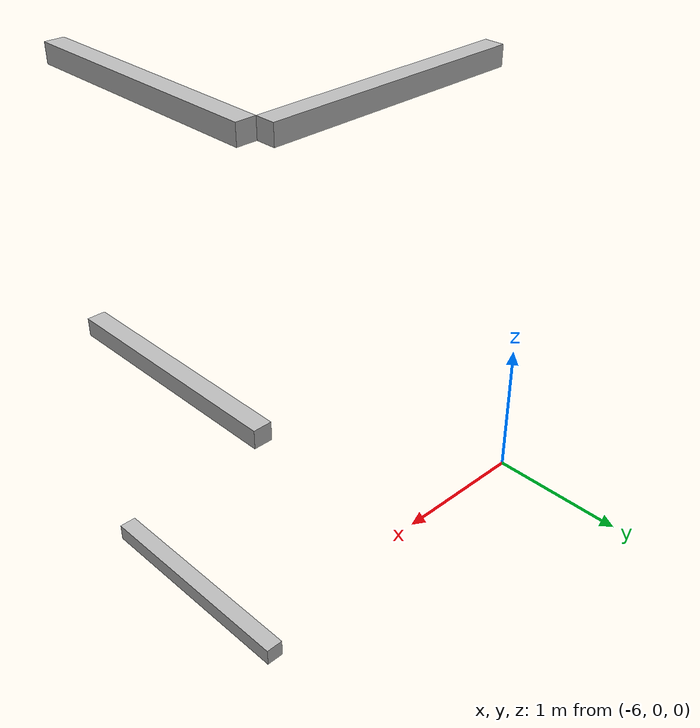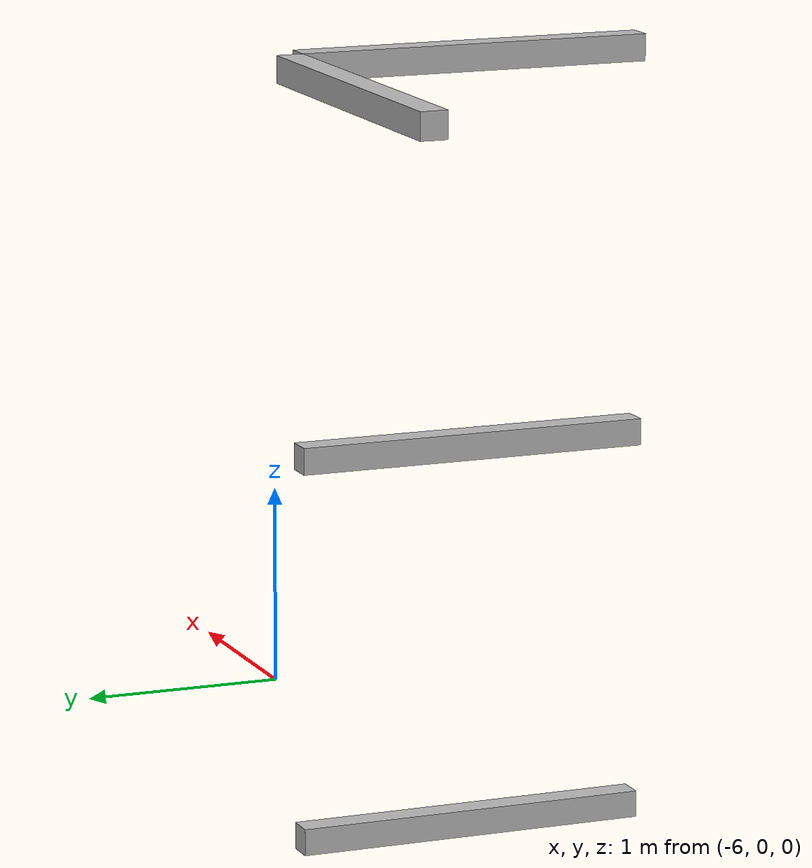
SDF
<sdf version="1.7">
 <world name="default">
  <model name="orthogonal_747_2.000.15_TS">
   <static>1</static>
   <link name="y_link_0_1_1">
    <inertial>
     <mass>1</mass>
     <inertia>
      <ixx>0.166667</ixx>
      <ixy>0</ixy>
      <ixz>0</ixz>
      <iyy>0.166667</iyy>
      <iyz>0</iyz>
      <izz>0.166667</izz>
     </inertia>
    </inertial>
    <pose>2.15 3.225 1.075 0 -0 0</pose>
    <visual name="visual_0">
     <laser_retro>190</laser_retro>
     <geometry><box><size>0.15 1e-06 0.15</size></box></geometry>
     <material>
      <script><name>Gazebo/Grey</name><uri>file://media/materials/scripts/gazebo.material</uri></script>
      <shader type="pixel"><normal_map>__default__</normal_map></shader>
      <ambient>0.678 0.498 0.659 1</ambient>
      <diffuse>0.7 0.7 0.7 1</diffuse>
      <specular>0.01 0.01 0.01 1</specular>
      <emissive>0 0 0 1</emissive>
     </material>
     <pose>0 -1 0 0 -0 0</pose>
     <transparency>1</transparency>
    </visual>
    <visual name="visual_1">
     <laser_retro>191</laser_retro>
     <geometry><box><size>0.15 1e-06 0.15</size></box></geometry>
     <material>
      <script><name>Gazebo/Grey</name><uri>file://media/materials/scripts/gazebo.material</uri></script>
      <shader type="pixel"><normal_map>__default__</normal_map></shader>
      <ambient>0.447 0.624 0.812 1</ambient>
      <diffuse>0.7 0.7 0.7 1</diffuse>
      <specular>0.01 0.01 0.01 1</specular>
      <emissive>0 0 0 1</emissive>
     </material>
     <pose>0 1 0 0 -0 0</pose>
     <transparency>1</transparency>
    </visual>
    <visual name="visual_2">
     <laser_retro>192</laser_retro>
     <geometry><box><size>0.15 2 1e-06</size></box></geometry>
     <material>
      <script><name>Gazebo/Grey</name><uri>file://media/materials/scripts/gazebo.material</uri></script>
      <shader type="pixel"><normal_map>__default__</normal_map></shader>
      <ambient>0.988 0.686 0.243 1</ambient>
      <diffuse>0.7 0.7 0.7 1</diffuse>
      <specular>0.01 0.01 0.01 1</specular>
      <emissive>0 0 0 1</emissive>
     </material>
     <pose>0 0 -0.075 0 -0 0</pose>
     <transparency>1</transparency>
    </visual>
    <visual name="visual_3">
     <laser_retro>193</laser_retro>
     <geometry><box><size>1e-06 2 0.15</size></box></geometry>
     <material>
      <script><name>Gazebo/Grey</name><uri>file://media/materials/scripts/gazebo.material</uri></script>
      <shader type="pixel"><normal_map>__default__</normal_map></shader>
      <ambient>0.988 0.914 0.31 1</ambient>
      <diffuse>0.7 0.7 0.7 1</diffuse>
      <specular>0.01 0.01 0.01 1</specular>
      <emissive>0 0 0 1</emissive>
     </material>
     <pose>0.075 0 0 0 -0 0</pose>
     <transparency>1</transparency>
    </visual>
    <visual name="visual_4">
     <laser_retro>194</laser_retro>
     <geometry><box><size>0.15 2 1e-06</size></box></geometry>
     <material>
      <script><name>Gazebo/Grey</name><uri>file://media/materials/scripts/gazebo.material</uri></script>
      <shader type="pixel"><normal_map>__default__</normal_map></shader>
      <ambient>0.937 0.161 0.161 1</ambient>
      <diffuse>0.7 0.7 0.7 1</diffuse>
      <specular>0.01 0.01 0.01 1</specular>
      <emissive>0 0 0 1</emissive>
     </material>
     <pose>0 0 0.075 0 -0 0</pose>
     <transparency>1</transparency>
    </visual>
    <visual name="visual_5">
     <laser_retro>195</laser_retro>
     <geometry><box><size>1e-06 2 0.15</size></box></geometry>
     <material>
      <script><name>Gazebo/Grey</name><uri>file://media/materials/scripts/gazebo.material</uri></script>
      <shader type="pixel"><normal_map>__default__</normal_map></shader>
      <ambient>0.541 0.886 0.204 1</ambient>
      <diffuse>0.7 0.7 0.7 1</diffuse>
      <specular>0.01 0.01 0.01 1</specular>
      <emissive>0 0 0 1</emissive>
     </material>
     <pose>-0.075 0 0 0 -0 0</pose>
     <transparency>1</transparency>
    </visual>
    <visual name="visual_texture">
     <geometry><box><size>0.149985 1.9998 0.149985</size></box></geometry>
     <material>
      <script>
       <uri>model://BASE_MODELS/simple_block_v2_textured/materials/scripts</uri>
       <uri>model://BASE_MODELS/simple_block_v2_textured/materials/textures</uri>
       <name>metal</name>
      </script>
     </material>
     <laser_retro>196</laser_retro>
    </visual>
    <collision name="collision">
     <geometry><box><size>0.15 2 0.15</size></box></geometry>
     <surface>
      <friction>
       <ode><mu>1</mu><mu2>1</mu2><fdir1>0 0 0</fdir1><slip1>0</slip1><slip2>0</slip2></ode>
       <torsional>
        <coefficient>1</coefficient>
        <patch_radius>0</patch_radius>
        <surface_radius>0</surface_radius>
        <use_patch_radius>1</use_patch_radius>
        <ode><slip>0</slip></ode>
       </torsional>
      </friction>
      <bounce><restitution_coefficient>0</restitution_coefficient><threshold>1e+06</threshold></bounce>
      <contact>
       <collide_without_contact>0</collide_without_contact>
       <collide_without_contact_bitmask>1</collide_without_contact_bitmask>
       <collide_bitmask>1</collide_bitmask>
       <ode>
        <soft_cfm>0</soft_cfm>
        <soft_erp>0.2</soft_erp>
        <kp>1e+13</kp>
        <kd>1</kd>
        <max_vel>0.01</max_vel>
        <min_depth>0</min_depth>
       </ode>
       <bullet>
        <split_impulse>1</split_impulse>
        <split_impulse_penetration_threshold>-0.01</split_impulse_penetration_threshold>
        <soft_cfm>0</soft_cfm>
        <soft_erp>0.2</soft_erp>
        <kp>1e+13</kp>
        <kd>1</kd>
       </bullet>
      </contact>
     </surface>
    </collision>
   </link>
   <link name="y_link_1_1_1">
    <inertial>
     <mass>1</mass>
     <inertia>
      <ixx>0.166667</ixx>
      <ixy>0</ixy>
      <ixz>0</ixz>
      <iyy>0.166667</iyy>
      <iyz>0</iyz>
      <izz>0.166667</izz>
     </inertia>
    </inertial>
    <pose>2.15 3.225 3.225 0 -0 0</pose>
    <visual name="visual_0">
     <laser_retro>1002</laser_retro>
     <geometry><box><size>0.15 1e-06 0.15</size></box></geometry>
     <material>
      <script><name>Gazebo/Grey</name><uri>file://media/materials/scripts/gazebo.material</uri></script>
      <shader type="pixel"><normal_map>__default__</normal_map></shader>
      <ambient>0.678 0.498 0.659 1</ambient>
      <diffuse>0.7 0.7 0.7 1</diffuse>
      <specular>0.01 0.01 0.01 1</specular>
      <emissive>0 0 0 1</emissive>
     </material>
     <pose>0 -1 0 0 -0 0</pose>
     <transparency>1</transparency>
    </visual>
    <visual name="visual_1">
     <laser_retro>1003</laser_retro>
     <geometry><box><size>0.15 1e-06 0.15</size></box></geometry>
     <material>
      <script><name>Gazebo/Grey</name><uri>file://media/materials/scripts/gazebo.material</uri></script>
      <shader type="pixel"><normal_map>__default__</normal_map></shader>
      <ambient>0.447 0.624 0.812 1</ambient>
      <diffuse>0.7 0.7 0.7 1</diffuse>
      <specular>0.01 0.01 0.01 1</specular>
      <emissive>0 0 0 1</emissive>
     </material>
     <pose>0 1 0 0 -0 0</pose>
     <transparency>1</transparency>
    </visual>
    <visual name="visual_2">
     <laser_retro>1004</laser_retro>
     <geometry><box><size>0.15 2 1e-06</size></box></geometry>
     <material>
      <script><name>Gazebo/Grey</name><uri>file://media/materials/scripts/gazebo.material</uri></script>
      <shader type="pixel"><normal_map>__default__</normal_map></shader>
      <ambient>0.988 0.686 0.243 1</ambient>
      <diffuse>0.7 0.7 0.7 1</diffuse>
      <specular>0.01 0.01 0.01 1</specular>
      <emissive>0 0 0 1</emissive>
     </material>
     <pose>0 0 -0.075 0 -0 0</pose>
     <transparency>1</transparency>
    </visual>
    <visual name="visual_3">
     <laser_retro>1005</laser_retro>
     <geometry><box><size>1e-06 2 0.15</size></box></geometry>
     <material>
      <script><name>Gazebo/Grey</name><uri>file://media/materials/scripts/gazebo.material</uri></script>
      <shader type="pixel"><normal_map>__default__</normal_map></shader>
      <ambient>0.988 0.914 0.31 1</ambient>
      <diffuse>0.7 0.7 0.7 1</diffuse>
      <specular>0.01 0.01 0.01 1</specular>
      <emissive>0 0 0 1</emissive>
     </material>
     <pose>0.075 0 0 0 -0 0</pose>
     <transparency>1</transparency>
    </visual>
    <visual name="visual_4">
     <laser_retro>1006</laser_retro>
     <geometry><box><size>0.15 2 1e-06</size></box></geometry>
     <material>
      <script><name>Gazebo/Grey</name><uri>file://media/materials/scripts/gazebo.material</uri></script>
      <shader type="pixel"><normal_map>__default__</normal_map></shader>
      <ambient>0.937 0.161 0.161 1</ambient>
      <diffuse>0.7 0.7 0.7 1</diffuse>
      <specular>0.01 0.01 0.01 1</specular>
      <emissive>0 0 0 1</emissive>
     </material>
     <pose>0 0 0.075 0 -0 0</pose>
     <transparency>1</transparency>
    </visual>
    <visual name="visual_5">
     <laser_retro>1007</laser_retro>
     <geometry><box><size>1e-06 2 0.15</size></box></geometry>
     <material>
      <script><name>Gazebo/Grey</name><uri>file://media/materials/scripts/gazebo.material</uri></script>
      <shader type="pixel"><normal_map>__default__</normal_map></shader>
      <ambient>0.541 0.886 0.204 1</ambient>
      <diffuse>0.7 0.7 0.7 1</diffuse>
      <specular>0.01 0.01 0.01 1</specular>
      <emissive>0 0 0 1</emissive>
     </material>
     <pose>-0.075 0 0 0 -0 0</pose>
     <transparency>1</transparency>
    </visual>
    <visual name="visual_texture">
     <geometry><box><size>0.149985 1.9998 0.149985</size></box></geometry>
     <material>
      <script>
       <uri>model://BASE_MODELS/simple_block_v2_textured/materials/scripts</uri>
       <uri>model://BASE_MODELS/simple_block_v2_textured/materials/textures</uri>
       <name>metal</name>
      </script>
     </material>
     <laser_retro>1008</laser_retro>
    </visual>
    <collision name="collision">
     <geometry><box><size>0.15 2 0.15</size></box></geometry>
     <surface>
      <friction>
       <ode><mu>1</mu><mu2>1</mu2><fdir1>0 0 0</fdir1><slip1>0</slip1><slip2>0</slip2></ode>
       <torsional>
        <coefficient>1</coefficient>
        <patch_radius>0</patch_radius>
        <surface_radius>0</surface_radius>
        <use_patch_radius>1</use_patch_radius>
        <ode><slip>0</slip></ode>
       </torsional>
      </friction>
      <bounce><restitution_coefficient>0</restitution_coefficient><threshold>1e+06</threshold></bounce>
      <contact>
       <collide_without_contact>0</collide_without_contact>
       <collide_without_contact_bitmask>1</collide_without_contact_bitmask>
       <collide_bitmask>1</collide_bitmask>
       <ode>
        <soft_cfm>0</soft_cfm>
        <soft_erp>0.2</soft_erp>
        <kp>1e+13</kp>
        <kd>1</kd>
        <max_vel>0.01</max_vel>
        <min_depth>0</min_depth>
       </ode>
       <bullet>
        <split_impulse>1</split_impulse>
        <split_impulse_penetration_threshold>-0.01</split_impulse_penetration_threshold>
        <soft_cfm>0</soft_cfm>
        <soft_erp>0.2</soft_erp>
        <kp>1e+13</kp>
        <kd>1</kd>
       </bullet>
      </contact>
     </surface>
    </collision>
   </link>
   <link name="y_link_2_1_1">
    <inertial>
     <mass>1</mass>
     <inertia>
      <ixx>0.166667</ixx>
      <ixy>0</ixy>
      <ixz>0</ixz>
      <iyy>0.166667</iyy>
      <iyz>0</iyz>
      <izz>0.166667</izz>
     </inertia>
    </inertial>
    <pose>2.15 3.225 5.375 0 -0 0</pose>
    <visual name="visual_0">
     <laser_retro>1905</laser_retro>
     <geometry><box><size>0.15 1e-06 0.15</size></box></geometry>
     <material>
      <script><name>Gazebo/Grey</name><uri>file://media/materials/scripts/gazebo.material</uri></script>
      <shader type="pixel"><normal_map>__default__</normal_map></shader>
      <ambient>0.678 0.498 0.659 1</ambient>
      <diffuse>0.7 0.7 0.7 1</diffuse>
      <specular>0.01 0.01 0.01 1</specular>
      <emissive>0 0 0 1</emissive>
     </material>
     <pose>0 -1 0 0 -0 0</pose>
     <transparency>1</transparency>
    </visual>
    <visual name="visual_1">
     <laser_retro>1906</laser_retro>
     <geometry><box><size>0.15 1e-06 0.15</size></box></geometry>
     <material>
      <script><name>Gazebo/Grey</name><uri>file://media/materials/scripts/gazebo.material</uri></script>
      <shader type="pixel"><normal_map>__default__</normal_map></shader>
      <ambient>0.447 0.624 0.812 1</ambient>
      <diffuse>0.7 0.7 0.7 1</diffuse>
      <specular>0.01 0.01 0.01 1</specular>
      <emissive>0 0 0 1</emissive>
     </material>
     <pose>0 1 0 0 -0 0</pose>
     <transparency>1</transparency>
    </visual>
    <visual name="visual_2">
     <laser_retro>1907</laser_retro>
     <geometry><box><size>0.15 2 1e-06</size></box></geometry>
     <material>
      <script><name>Gazebo/Grey</name><uri>file://media/materials/scripts/gazebo.material</uri></script>
      <shader type="pixel"><normal_map>__default__</normal_map></shader>
      <ambient>0.988 0.686 0.243 1</ambient>
      <diffuse>0.7 0.7 0.7 1</diffuse>
      <specular>0.01 0.01 0.01 1</specular>
      <emissive>0 0 0 1</emissive>
     </material>
     <pose>0 0 -0.075 0 -0 0</pose>
     <transparency>1</transparency>
    </visual>
    <visual name="visual_3">
     <laser_retro>1908</laser_retro>
     <geometry><box><size>1e-06 2 0.15</size></box></geometry>
     <material>
      <script><name>Gazebo/Grey</name><uri>file://media/materials/scripts/gazebo.material</uri></script>
      <shader type="pixel"><normal_map>__default__</normal_map></shader>
      <ambient>0.988 0.914 0.31 1</ambient>
      <diffuse>0.7 0.7 0.7 1</diffuse>
      <specular>0.01 0.01 0.01 1</specular>
      <emissive>0 0 0 1</emissive>
     </material>
     <pose>0.075 0 0 0 -0 0</pose>
     <transparency>1</transparency>
    </visual>
    <visual name="visual_4">
     <laser_retro>1909</laser_retro>
     <geometry><box><size>0.15 2 1e-06</size></box></geometry>
     <material>
      <script><name>Gazebo/Grey</name><uri>file://media/materials/scripts/gazebo.material</uri></script>
      <shader type="pixel"><normal_map>__default__</normal_map></shader>
      <ambient>0.937 0.161 0.161 1</ambient>
      <diffuse>0.7 0.7 0.7 1</diffuse>
      <specular>0.01 0.01 0.01 1</specular>
      <emissive>0 0 0 1</emissive>
     </material>
     <pose>0 0 0.075 0 -0 0</pose>
     <transparency>1</transparency>
    </visual>
    <visual name="visual_5">
     <laser_retro>1910</laser_retro>
     <geometry><box><size>1e-06 2 0.15</size></box></geometry>
     <material>
      <script><name>Gazebo/Grey</name><uri>file://media/materials/scripts/gazebo.material</uri></script>
      <shader type="pixel"><normal_map>__default__</normal_map></shader>
      <ambient>0.541 0.886 0.204 1</ambient>
      <diffuse>0.7 0.7 0.7 1</diffuse>
      <specular>0.01 0.01 0.01 1</specular>
      <emissive>0 0 0 1</emissive>
     </material>
     <pose>-0.075 0 0 0 -0 0</pose>
     <transparency>1</transparency>
    </visual>
    <visual name="visual_texture">
     <geometry><box><size>0.149985 1.9998 0.149985</size></box></geometry>
     <material>
      <script>
       <uri>model://BASE_MODELS/simple_block_v2_textured/materials/scripts</uri>
       <uri>model://BASE_MODELS/simple_block_v2_textured/materials/textures</uri>
       <name>metal</name>
      </script>
     </material>
     <laser_retro>1911</laser_retro>
    </visual>
    <collision name="collision">
     <geometry><box><size>0.15 2 0.15</size></box></geometry>
     <surface>
      <friction>
       <ode><mu>1</mu><mu2>1</mu2><fdir1>0 0 0</fdir1><slip1>0</slip1><slip2>0</slip2></ode>
       <torsional>
        <coefficient>1</coefficient>
        <patch_radius>0</patch_radius>
        <surface_radius>0</surface_radius>
        <use_patch_radius>1</use_patch_radius>
        <ode><slip>0</slip></ode>
       </torsional>
      </friction>
      <bounce><restitution_coefficient>0</restitution_coefficient><threshold>1e+06</threshold></bounce>
      <contact>
       <collide_without_contact>0</collide_without_contact>
       <collide_without_contact_bitmask>1</collide_without_contact_bitmask>
       <collide_bitmask>1</collide_bitmask>
       <ode>
        <soft_cfm>0</soft_cfm>
        <soft_erp>0.2</soft_erp>
        <kp>1e+13</kp>
        <kd>1</kd>
        <max_vel>0.01</max_vel>
        <min_depth>0</min_depth>
       </ode>
       <bullet>
        <split_impulse>1</split_impulse>
        <split_impulse_penetration_threshold>-0.01</split_impulse_penetration_threshold>
        <soft_cfm>0</soft_cfm>
        <soft_erp>0.2</soft_erp>
        <kp>1e+13</kp>
        <kd>1</kd>
       </bullet>
      </contact>
     </surface>
    </collision>
   </link>
   <link name="x_link_2_2_0">
    <inertial>
     <mass>1</mass>
     <inertia>
      <ixx>0.166667</ixx>
      <ixy>0</ixy>
      <ixz>0</ixz>
      <iyy>0.166667</iyy>
      <iyz>0</iyz>
      <izz>0.166667</izz>
     </inertia>
    </inertial>
    <pose>1.075 4.3 5.375 0 -0 0</pose>
    <visual name="visual_0">
     <laser_retro>2045</laser_retro>
     <geometry><box><size>2 1e-06 0.15</size></box></geometry>
     <material>
      <script><name>Gazebo/Grey</name><uri>file://media/materials/scripts/gazebo.material</uri></script>
      <shader type="pixel"><normal_map>__default__</normal_map></shader>
      <ambient>0.678 0.498 0.659 1</ambient>
      <diffuse>0.7 0.7 0.7 1</diffuse>
      <specular>0.01 0.01 0.01 1</specular>
      <emissive>0 0 0 1</emissive>
     </material>
     <pose>0 -0.075 0 0 -0 0</pose>
     <transparency>1</transparency>
    </visual>
    <visual name="visual_1">
     <laser_retro>2046</laser_retro>
     <geometry><box><size>2 1e-06 0.15</size></box></geometry>
     <material>
      <script><name>Gazebo/Grey</name><uri>file://media/materials/scripts/gazebo.material</uri></script>
      <shader type="pixel"><normal_map>__default__</normal_map></shader>
      <ambient>0.447 0.624 0.812 1</ambient>
      <diffuse>0.7 0.7 0.7 1</diffuse>
      <specular>0.01 0.01 0.01 1</specular>
      <emissive>0 0 0 1</emissive>
     </material>
     <pose>0 0.075 0 0 -0 0</pose>
     <transparency>1</transparency>
    </visual>
    <visual name="visual_2">
     <laser_retro>2047</laser_retro>
     <geometry><box><size>2 0.15 1e-06</size></box></geometry>
     <material>
      <script><name>Gazebo/Grey</name><uri>file://media/materials/scripts/gazebo.material</uri></script>
      <shader type="pixel"><normal_map>__default__</normal_map></shader>
      <ambient>0.988 0.686 0.243 1</ambient>
      <diffuse>0.7 0.7 0.7 1</diffuse>
      <specular>0.01 0.01 0.01 1</specular>
      <emissive>0 0 0 1</emissive>
     </material>
     <pose>0 0 -0.075 0 -0 0</pose>
     <transparency>1</transparency>
    </visual>
    <visual name="visual_3">
     <laser_retro>2048</laser_retro>
     <geometry><box><size>1e-06 0.15 0.15</size></box></geometry>
     <material>
      <script><name>Gazebo/Grey</name><uri>file://media/materials/scripts/gazebo.material</uri></script>
      <shader type="pixel"><normal_map>__default__</normal_map></shader>
      <ambient>0.988 0.914 0.31 1</ambient>
      <diffuse>0.7 0.7 0.7 1</diffuse>
      <specular>0.01 0.01 0.01 1</specular>
      <emissive>0 0 0 1</emissive>
     </material>
     <pose>1 0 0 0 -0 0</pose>
     <transparency>1</transparency>
    </visual>
    <visual name="visual_4">
     <laser_retro>2049</laser_retro>
     <geometry><box><size>2 0.15 1e-06</size></box></geometry>
     <material>
      <script><name>Gazebo/Grey</name><uri>file://media/materials/scripts/gazebo.material</uri></script>
      <shader type="pixel"><normal_map>__default__</normal_map></shader>
      <ambient>0.937 0.161 0.161 1</ambient>
      <diffuse>0.7 0.7 0.7 1</diffuse>
      <specular>0.01 0.01 0.01 1</specular>
      <emissive>0 0 0 1</emissive>
     </material>
     <pose>0 0 0.075 0 -0 0</pose>
     <transparency>1</transparency>
    </visual>
    <visual name="visual_5">
     <laser_retro>2050</laser_retro>
     <geometry><box><size>1e-06 0.15 0.15</size></box></geometry>
     <material>
      <script><name>Gazebo/Grey</name><uri>file://media/materials/scripts/gazebo.material</uri></script>
      <shader type="pixel"><normal_map>__default__</normal_map></shader>
      <ambient>0.541 0.886 0.204 1</ambient>
      <diffuse>0.7 0.7 0.7 1</diffuse>
      <specular>0.01 0.01 0.01 1</specular>
      <emissive>0 0 0 1</emissive>
     </material>
     <pose>-1 0 0 0 -0 0</pose>
     <transparency>1</transparency>
    </visual>
    <visual name="visual_texture">
     <geometry><box><size>1.9998 0.149985 0.149985</size></box></geometry>
     <material>
      <script>
       <uri>model://BASE_MODELS/simple_block_v2_textured/materials/scripts</uri>
       <uri>model://BASE_MODELS/simple_block_v2_textured/materials/textures</uri>
       <name>metal</name>
      </script>
     </material>
     <laser_retro>2051</laser_retro>
    </visual>
    <collision name="collision">
     <geometry><box><size>2 0.15 0.15</size></box></geometry>
     <surface>
      <friction>
       <ode><mu>1</mu><mu2>1</mu2><fdir1>0 0 0</fdir1><slip1>0</slip1><slip2>0</slip2></ode>
       <torsional>
        <coefficient>1</coefficient>
        <patch_radius>0</patch_radius>
        <surface_radius>0</surface_radius>
        <use_patch_radius>1</use_patch_radius>
        <ode><slip>0</slip></ode>
       </torsional>
      </friction>
      <bounce><restitution_coefficient>0</restitution_coefficient><threshold>1e+06</threshold></bounce>
      <contact>
       <collide_without_contact>0</collide_without_contact>
       <collide_without_contact_bitmask>1</collide_without_contact_bitmask>
       <collide_bitmask>1</collide_bitmask>
       <ode>
        <soft_cfm>0</soft_cfm>
        <soft_erp>0.2</soft_erp>
        <kp>1e+13</kp>
        <kd>1</kd>
        <max_vel>0.01</max_vel>
        <min_depth>0</min_depth>
       </ode>
       <bullet>
        <split_impulse>1</split_impulse>
        <split_impulse_penetration_threshold>-0.01</split_impulse_penetration_threshold>
        <soft_cfm>0</soft_cfm>
        <soft_erp>0.2</soft_erp>
        <kp>1e+13</kp>
        <kd>1</kd>
       </bullet>
      </contact>
     </surface>
    </collision>
   </link>
   <pose>-6.47624 -5 -2.5 0 -0 0</pose>
  </model>
 </world>
</sdf>
